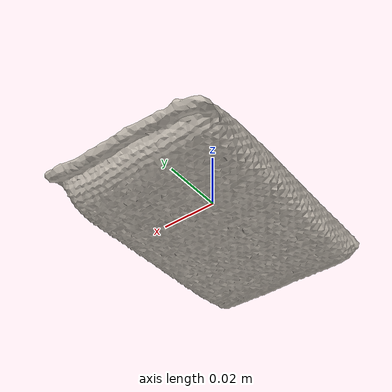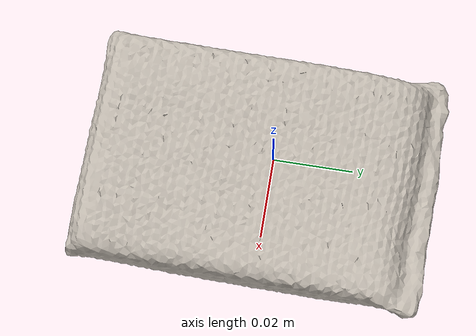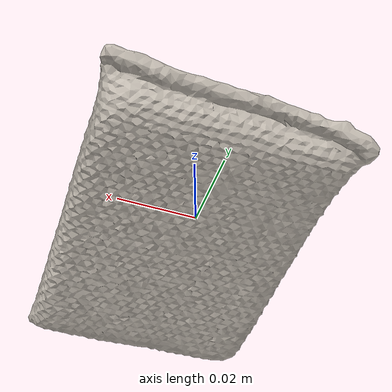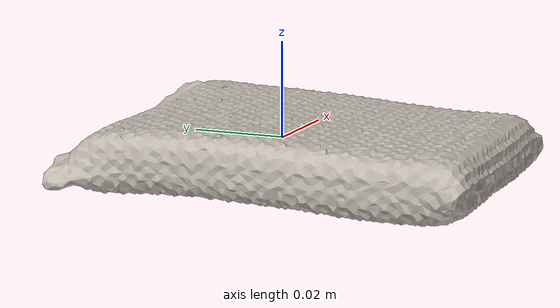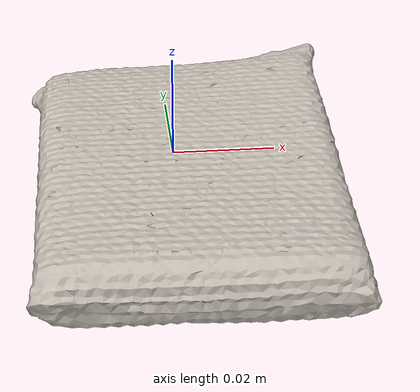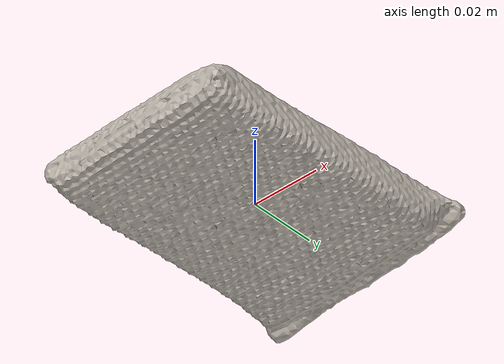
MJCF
<mujoco model="bread">
  <asset>
    <mesh file="nontextured.stl" name="obj_mesh" scale="0.8 0.8 0.8"/>
    <texture file="../../../../../textures/bread.png" type="2d" name="tex-bread" />
    <material name="bread" reflectance="0.7" texrepeat="15 15" texture="tex-bread" texuniform="true"/>
  </asset>
  <worldbody>
    <body>
      <body name="collision">
        <geom pos="0.0153445 -0.0137445 -0.009619500000000001" mesh="obj_mesh" type="mesh" solimp="0.998 0.998 0.001" solref="0.001 1" density="50" friction="0.95 0.3 0.1"  material="bread" group="1" condim="4"/>
      </body>
      <body name="visual">
        <geom pos="0.0153445 -0.0137445 -0.009619500000000001" mesh="obj_mesh" type="mesh" material="bread"  conaffinity="0" contype="0"  group="0" mass="0.0001"/>
        <geom pos="0.0153445 -0.0137445 -0.009619500000000001" mesh="obj_mesh" type="mesh" material="bread"  conaffinity="0" contype="0"  group="1" mass="0.0001"/>
      </body>
      <site rgba="0 0 0 0" size="0.005" pos="0 0 -0.0095035" name="bottom_site"/>
      <site rgba="0 0 0 0" size="0.005" pos="0 0 0.0095035" name="top_site"/>
      <site rgba="0 0 0 0" size="0.005" pos="0.0395735 0.0560565 0.0095035" name="horizontal_radius_site"/>
    </body>
  </worldbody>
</mujoco>
